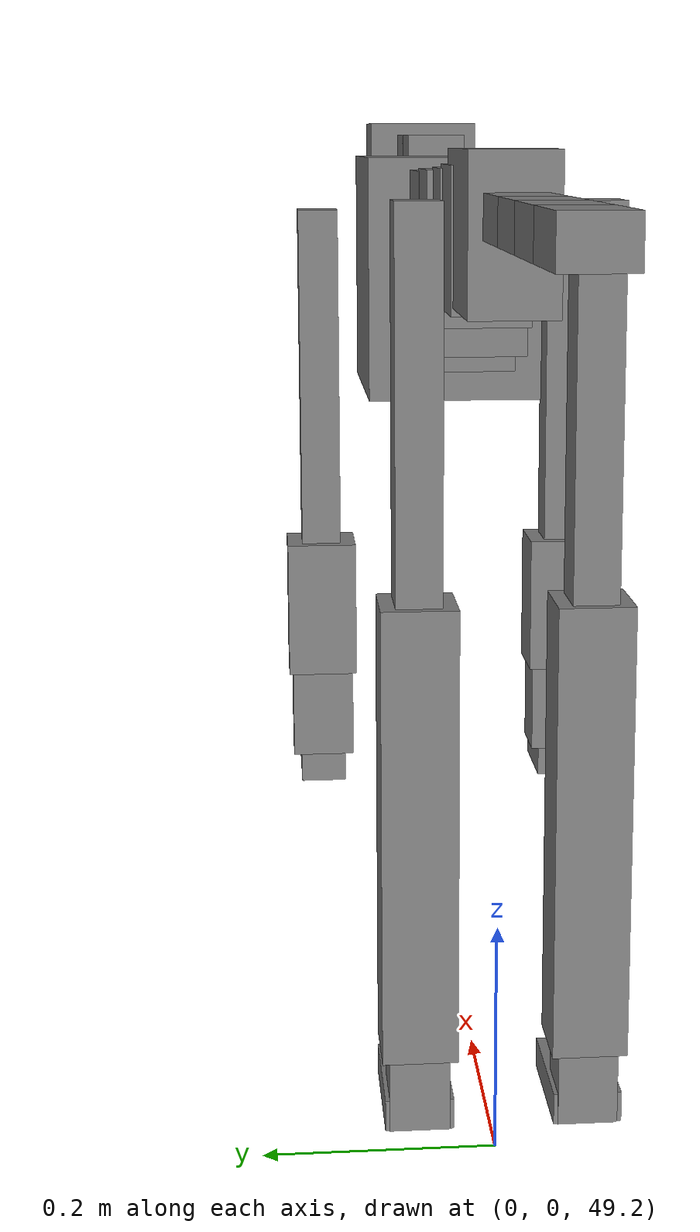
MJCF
<mujoco model="dog">

    <default>
        <joint armature="0.02" stiffness="1" damping="0.2" limited="true"/>
        <geom condim="3" friction="1 0.05 0.05" margin="0.01"/>
        <motor ctrllimited="true" ctrlrange="-1.0 1.0" forcelimited="true" gear="50"/>
    </default>

    <compiler inertiafromgeom="true" angle="radian"/>

    <option timestep="0.016" iterations="50" tolerance="1e-10" solver="Newton" jacobian="dense" cone="pyramidal"/>

    <size nconmax="20000" njmax="60000" nstack="5000000"/>
    <visual>
        <map force="0.1" zfar="30"/>
        <rgba haze="0.15 0.25 0.35 1"/>
        <quality shadowsize="2048"/>
        <global offwidth="800" offheight="800"/>
    </visual>

    <asset>
        <texture type="skybox" builtin="gradient" rgb1="0.3 0.5 0.7" rgb2="0 0 0" width="512" height="512"/>
        <texture name="texplane" type="2d" builtin="checker" rgb1=".2 .3 .4" rgb2=".1 0.15 0.2" width="512" height="512"
                 mark="cross" markrgb=".8 .8 .8"/>
        <texture name="texgeom" type="cube" builtin="flat" mark="cross" width="127" height="1278" rgb1="0.8 0.6 0.4"
                 rgb2="0.8 0.6 0.4" markrgb="1 1 1" random="0.01"/>

        <material name="matplane" reflectance="0.3" texture="texplane" texrepeat="1 1" texuniform="true"/>
        <material name="matgeom" texture="texgeom" texuniform="true" rgba="0.8 0.6 .4 1"/>
    </asset>

    <worldbody>
        <geom name="floor" pos="0 0 0" size="0 0 .25" type="plane" material="matplane" condim="3"/>

        <light directional="false" diffuse=".2 .2 .2" specular="0 0 0" pos="0 0 5" dir="0 0 -1" castshadow="false"/>
        <light mode="targetbodycom" target="torso" directional="false" diffuse=".8 .8 .8" specular="0.3 0.3 0.3"
               pos="0 0 4.0" dir="0 0 -1"/>

        <body name="root" pos="0 0 50">
            <freejoint name="root_1"/>
            <geom type="box" pos="0 0 -0.02" size="0.0774  0.0358  0.063" density="2030"/>

            <body name="spine1" pos="0.054 0 0">
                <joint name="spine1_y" axis="0 1 0" range="0 0.7" limited="true"/>
                <geom type="box" pos="0.02375 0 -0.03" size="0.04375  0.0375  0.05985" density="2030"/>

                <body name="spine2" pos="0.0612 0 0">
                    <joint name="spine2_y" axis="0 1 0" range="-0.15 0.15" limited="true"/>
                    <geom type="box" pos="0.03555  0  -0.04" size="0.04055  0.039  0.06615" density="2030"/>

                    <body name="spine3" pos="0.0730 0 0">
                        <joint name="spine3_y" axis="0 1 0" range="-0.15 0.15" limited="true"/>
                        <geom type="box" pos="0.03555  0  -0.057" size="0.04555  0.0445  0.081" density="2030"/>

                        <body name="spine4" pos="0.0780 0 0">
                            <joint name="spine4_y" axis="0 1 0" range="-0.15 0.15" limited="true"/>
                            <geom type="box" pos="0.05265  0  -0.07" size="0.05265  0.045  0.09135" density="2030"/>

                            <body name="torso" pos="0.1082 0 0">
                                <joint name="torso_y" axis="0 1 0" range="-0.15 0.15" limited="true"/>
                                <geom type="box" pos="0.11925  0  -0.085" size="0.11925  0.085  0.11745"
                                      density="2030"/>

                                <body name="neck1" pos="0.2160  0   0.0180">
                                    <joint name="neck1_y" axis="0 1 0" range="-1.2  -1" limited="true"/>
                                    <geom type="box" pos="0.0423  0  0" size="0.0423  0.03  0.036" density="2325"/>

                                    <body name="neck2" pos="0.0853  0  0">
                                        <joint name="neck2_y" axis="0 1 0" range="0.1  0" limited="true"/>
                                        <geom type="box" pos="0.0423  0  0" size="0.0423  0.03  0.036" density="2325"/>

                                        <body name="head" pos="0.0853  0  0">
                                            <joint name="head_y" axis="0 1 0" range="-0.3  -0.2" limited="true"/>
                                            <geom type="box" pos="0.0531  0  -0.055" size="0.0531  0.06  0.1044"
                                                  density="4030"/>

                                        </body>
                                    </body>
                                </body>

                                <body name="front_shoulder" pos="0.156  0   -0.0480">
                                    <joint name="front_shoulder_y" axis="0 1 0" range="-1 1.5" limited="true"/>
                                    <geom type="box" pos="0 0.13 -0.1620" size="0.0238  0.0203  0.1886" density="1158"/>
                                    <geom type="box" pos="0 -0.13 -0.1620" size="0.0238  0.0203  0.1886"
                                          density="1158"/>

                                    <body name="front_elbow" pos="0  0  -0.3239">
                                        <joint name="front_elbow_y" axis="0 1 0" range="-2 0" limited="true"/>
                                        <geom type="box" pos="0 0.13 -0.0707" size="0.0351  0.0359  0.0707"
                                              density="1081"/>
                                        <geom type="box" pos="0 -0.13 -0.0707" size="0.0351  0.0359  0.0707"
                                              density="1081"/>

                                        <body name="front_wrist" pos="0  0  -0.1413">
                                            <joint name="front_wrist_y" axis="0 1 0" range="-0.2 0" limited="true"/>
                                            <geom type="box" pos="0 0.13 -0.0393" size="0.0288  0.0320  0.0525"
                                                  density="1664"/>
                                            <geom type="box" pos="0 -0.13 -0.0393" size="0.0288  0.0320  0.0525"
                                                  density="1664"/>

                                            <body name="front_finger_end" pos="0  0  -0.0787">
                                                <joint name="front_finger_y" axis="0 1 0" range="-0.4 1"
                                                       limited="true"/>
                                                <geom type="box" pos="0.0235  0.13  -0.0155"
                                                      size="0.0432  0.0235  0.0305" density="1515"/>
                                                <geom type="box" pos="0.0235  -0.13  -0.0155"
                                                      size="0.0432  0.0235  0.0305" density="1515"/>

                                            </body>

                                        </body>
                                    </body>
                                </body>

                            </body>
                        </body>
                    </body>
                </body>
            </body>

            <body name="back_hip" pos="-0.03 0 -0.018">
                <joint name="back_hip_y" axis="0 1 0" range="-1.5 0.3" limited="true"/>
                <geom type="box" pos="0 0.07 -0.1532" size="0.0240  0.0188  0.1760" density="1154"/>
                <geom type="box" pos="0 -0.07 -0.1532" size="0.0240  0.0188  0.1760" density="1154"/>

                <body name="back_knee" pos="0  0  -0.3064">
                    <joint name="back_knee_y" axis="0 1 0" range="0 2.8" limited="true"/>
                    <geom type="box" pos="0 0.07 -0.1748" size="0.0315  0.0311  0.1903" density="1227"/>
                    <geom type="box" pos="0 -0.07 -0.1748" size="0.0315  0.0311  0.1903" density="1227"/>

                    <body name="back_ankle" pos="0  0  -0.3495">
                        <joint name="back_ankle_y" axis="0 1 0" range="-2.2 0" limited="true"/>
                        <geom type="box" pos="0 0.07 -0.0335" size="0.0248  0.0248  0.0448" density="1284"/>
                        <geom type="box" pos="0 -0.07 -0.0335" size="0.0248  0.0248  0.0448" density="1284"/>

                        <body name="back_toe_end" pos="0  0  -0.0670">
                            <joint name="back_toe_y" axis="0 1 0" range="-0.4 1" limited="true"/>
                            <geom type="box" pos="0.0284  0.07  0.0018" size="0.0520  0.0284  0.0132" density="1515"/>
                            <geom type="box" pos="0.0284  -0.07  0.0018" size="0.0520  0.0284  0.0132" density="1515"/>

                        </body>
                    </body>
                </body>
            </body>

            <body name="tail1" pos="-0.074 0 -0.006">
                <joint name="tail1_y" axis="0 1 0" range="-0.2 0.2" limited="true"/>
                <geom type="box" pos="-0.0536  0  0" size="0.045  0.025  0.0175" density="1587"/>

                <body name="tail2" pos="-0.09 0 0">
                    <joint name="tail2_y" axis="0 1 0" range="-0.2 0.2" limited="true"/>
                    <geom type="box" pos="-0.0536  0  0" size="0.045  0.025  0.0175" density="1587"/>

                    <body name="tail3" pos="-0.09 0 0">
                        <joint name="tail3_y" axis="0 1 0" range="-0.2 0.2" limited="true"/>
                        <geom type="box" pos="-0.0536  0  0" size="0.045  0.025  0.0175" density="1587"/>

                        <body name="tail4" pos="-0.09 0 0">
                            <joint name="tail4_y" axis="0 1 0" range="-0.2 0.2" limited="true"/>
                            <geom type="box" pos="-0.0536  0  0" size="0.045  0.025  0.0175" density="1587"/>

                        </body>
                    </body>
                </body>
            </body>
        </body>
    </worldbody>

    <actuator>
        <motor joint="spine1_y" forcerange="-150 150     "/>
        <motor joint="spine2_y" forcerange="-150 150     "/>
        <motor joint="spine3_y" forcerange="-150 150     "/>
        <motor joint="spine4_y" forcerange="-150 150     "/>
        <motor joint="torso_y" forcerange="-150 150     "/>
        <motor joint="neck1_y" forcerange="-100 100       "/>
        <motor joint="neck2_y" forcerange="-100 100       "/>
        <motor joint="head_y" forcerange="-150 150       "/>
        <motor joint="front_shoulder_y" forcerange="-128.89 106.77"/>
        <motor joint="front_elbow_y" forcerange="-191.81 169.49"/>
        <motor joint="front_wrist_y" forcerange="-133.05 122.97"/>
        <motor joint="front_finger_y" forcerange="-55.52 30.05"/>
        <motor joint="back_hip_y" forcerange="-201.74 248.94"/>
        <motor joint="back_knee_y" forcerange="-324.82 327.29"/>
        <motor joint="back_angle_y" forcerange="-230.57 66.51"/>
        <motor joint="back_toe_y" forcerange="-99.72 47.12"/>
        <motor joint="tail1_y" forcerange="-50 50     "/>
        <motor joint="tail2_y" forcerange="-50 50     "/>
        <motor joint="tail3_y" forcerange="-50 50     "/>
        <motor joint="tail4_y" forcerange="-50 50     "/>
    </actuator>
</mujoco>
